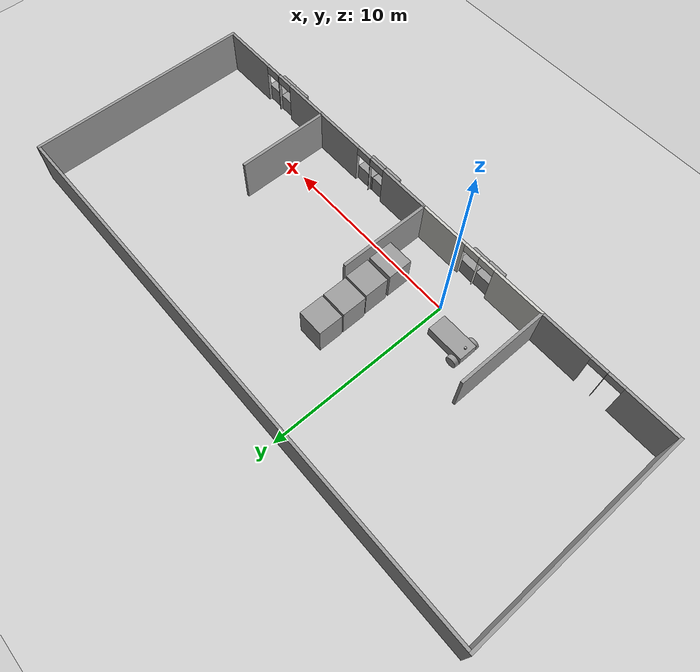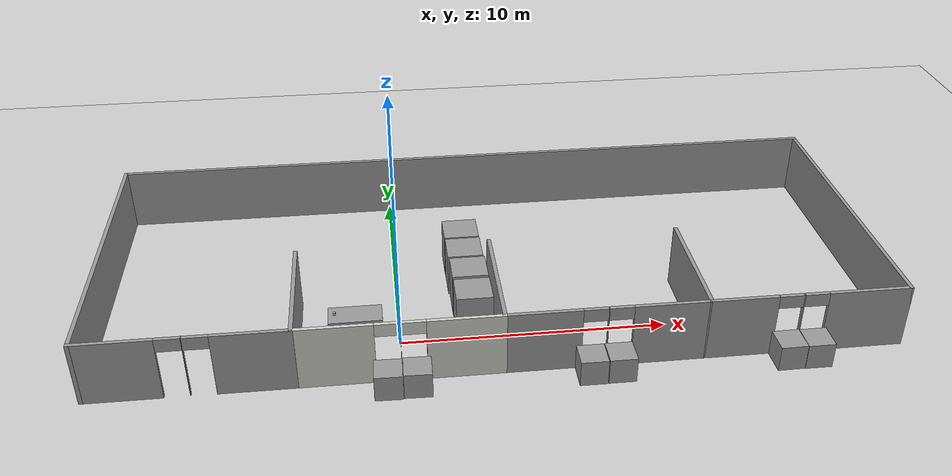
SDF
<sdf version="1.7">
 <world name="default">
  <light name="sun" type="directional">
   <pose>0 0 10 0 -0 0</pose>
   <diffuse>0.8 0.8 0.8 1</diffuse>
   <specular>0.2 0.2 0.2 1</specular>
   <attenuation>
    <range>1000</range>
    <constant>0.9</constant>
    <linear>0.01</linear>
    <quadratic>0.001</quadratic>
   </attenuation>
   <direction>-0.5 0.1 -0.9</direction>
   <spot><inner_angle>0</inner_angle><outer_angle>0</outer_angle><falloff>0</falloff></spot>
  </light>
  <model name="ground_plane">
   <static>1</static>
   <link name="link">
    <collision name="collision">
     <geometry><plane><normal>0 0 1</normal><size>100 100</size></plane></geometry>
     <surface><friction><ode><mu>100</mu><mu2>50</mu2></ode></friction></surface>
    </collision>
    <visual name="visual">
     <cast_shadows>0</cast_shadows>
     <geometry><plane><normal>0 0 1</normal><size>100 100</size></plane></geometry>
     <material>
      <script><uri>file://media/materials/scripts/gazebo.material</uri><name>Gazebo/Grey</name></script>
     </material>
    </visual>
   </link>
  </model>
  <gravity>0 0 -9.8</gravity>
  <magnetic_field>6e-06 2.3e-05 -4.2e-05</magnetic_field>
  <atmosphere type="adiabatic"/>
  <physics type="ode">
   <max_step_size>0.001</max_step_size>
   <real_time_factor>1</real_time_factor>
   <real_time_update_rate>1000</real_time_update_rate>
  </physics>
  <scene><ambient>0.4 0.4 0.4 1</ambient><background>0.7 0.7 0.7 1</background><shadows>1</shadows></scene>
  <spherical_coordinates>
   <surface_model>EARTH_WGS84</surface_model>
   <latitude_deg>0</latitude_deg>
   <longitude_deg>0</longitude_deg>
   <elevation>0</elevation>
   <heading_deg>0</heading_deg>
  </spherical_coordinates>
  <model name="gf_simulation">
   <pose>3.62768 3.86036 0 0 -0 0</pose>
   <link name="Wall_1">
    <pose>-3.675 -5.925 0 0 -0 0</pose>
    <visual name="Wall_1_Visual_0">
     <pose>-2.30795 0 1.25 0 -0 0</pose>
     <geometry><box><size>2.8841 0.15 2.5</size></box></geometry>
     <material>
      <script><uri>file://media/materials/scripts/gazebo.material</uri><name>Gazebo/CeilingTiled</name></script>
      <ambient>1 1 1 1</ambient>
     </material>
     <meta><layer>0</layer></meta>
    </visual>
    <collision name="Wall_1_Collision_0">
     <geometry><box><size>2.8841 0.15 2.5</size></box></geometry>
     <pose>-2.30795 0 1.25 0 -0 0</pose>
    </collision>
    <visual name="Wall_1_Visual_1">
     <pose>0.038466 0 1.25 0 -0 0</pose>
     <geometry><box><size>0.008729 0.15 2.5</size></box></geometry>
     <material>
      <script><uri>file://media/materials/scripts/gazebo.material</uri><name>Gazebo/CeilingTiled</name></script>
      <ambient>1 1 1 1</ambient>
     </material>
     <meta><layer>0</layer></meta>
    </visual>
    <collision name="Wall_1_Collision_1">
     <geometry><box><size>0.008729 0.15 2.5</size></box></geometry>
     <pose>0.038466 0 1.25 0 -0 0</pose>
    </collision>
    <visual name="Wall_1_Visual_2">
     <pose>2.34641 0 1.25 0 -0 0</pose>
     <geometry><box><size>2.80717 0.15 2.5</size></box></geometry>
     <material>
      <script><uri>file://media/materials/scripts/gazebo.material</uri><name>Gazebo/CeilingTiled</name></script>
      <ambient>1 1 1 1</ambient>
     </material>
     <meta><layer>0</layer></meta>
    </visual>
    <collision name="Wall_1_Collision_2">
     <geometry><box><size>2.80717 0.15 2.5</size></box></geometry>
     <pose>2.34641 0 1.25 0 -0 0</pose>
    </collision>
    <visual name="Wall_1_Visual_3">
     <pose>-0.415899 0 2.25 0 -0 0</pose>
     <geometry><box><size>0.9 0.15 0.5</size></box></geometry>
     <material>
      <script><uri>file://media/materials/scripts/gazebo.material</uri><name>Gazebo/CeilingTiled</name></script>
      <ambient>1 1 1 1</ambient>
     </material>
     <meta><layer>0</layer></meta>
    </visual>
    <collision name="Wall_1_Collision_3">
     <geometry><box><size>0.9 0.15 0.5</size></box></geometry>
     <pose>-0.415899 0 2.25 0 -0 0</pose>
    </collision>
    <visual name="Wall_1_Visual_4">
     <pose>0.49283 0 2.25 0 -0 0</pose>
     <geometry><box><size>0.9 0.15 0.5</size></box></geometry>
     <material>
      <script><uri>file://media/materials/scripts/gazebo.material</uri><name>Gazebo/CeilingTiled</name></script>
      <ambient>1 1 1 1</ambient>
     </material>
     <meta><layer>0</layer></meta>
    </visual>
    <collision name="Wall_1_Collision_4">
     <geometry><box><size>0.9 0.15 0.5</size></box></geometry>
     <pose>0.49283 0 2.25 0 -0 0</pose>
    </collision>
   </link>
   <link name="Wall_10">
    <pose>3.675 -5.925 0 0 -0 0</pose>
    <visual name="Wall_10_Visual_0">
     <pose>-2.33475 0 1.25 0 -0 0</pose>
     <geometry><box><size>2.83049 0.15 2.5</size></box></geometry>
     <material>
      <script><uri>file://media/materials/scripts/gazebo.material</uri><name>Gazebo/Grey</name></script>
      <ambient>1 1 1 1</ambient>
     </material>
     <meta><layer>0</layer></meta>
    </visual>
    <collision name="Wall_10_Collision_0">
     <geometry><box><size>2.83049 0.15 2.5</size></box></geometry>
     <pose>-2.33475 0 1.25 0 -0 0</pose>
    </collision>
    <visual name="Wall_10_Visual_1">
     <pose>-0.009967 0 1.25 0 -0 0</pose>
     <geometry><box><size>0.019079 0.15 2.5</size></box></geometry>
     <material>
      <script><uri>file://media/materials/scripts/gazebo.material</uri><name>Gazebo/Grey</name></script>
      <ambient>1 1 1 1</ambient>
     </material>
     <meta><layer>0</layer></meta>
    </visual>
    <collision name="Wall_10_Collision_1">
     <geometry><box><size>0.019079 0.15 2.5</size></box></geometry>
     <pose>-0.009967 0 1.25 0 -0 0</pose>
    </collision>
    <visual name="Wall_10_Visual_2">
     <pose>2.32479 0 1.25 0 -0 0</pose>
     <geometry><box><size>2.85043 0.15 2.5</size></box></geometry>
     <material>
      <script><uri>file://media/materials/scripts/gazebo.material</uri><name>Gazebo/Grey</name></script>
      <ambient>1 1 1 1</ambient>
     </material>
     <meta><layer>0</layer></meta>
    </visual>
    <collision name="Wall_10_Collision_2">
     <geometry><box><size>2.85043 0.15 2.5</size></box></geometry>
     <pose>2.32479 0 1.25 0 -0 0</pose>
    </collision>
    <visual name="Wall_10_Visual_3">
     <pose>-0.469506 0 2.25 0 -0 0</pose>
     <geometry><box><size>0.9 0.15 0.5</size></box></geometry>
     <material>
      <script><uri>file://media/materials/scripts/gazebo.material</uri><name>Gazebo/Grey</name></script>
      <ambient>1 1 1 1</ambient>
     </material>
     <meta><layer>0</layer></meta>
    </visual>
    <collision name="Wall_10_Collision_3">
     <geometry><box><size>0.9 0.15 0.5</size></box></geometry>
     <pose>-0.469506 0 2.25 0 -0 0</pose>
    </collision>
    <visual name="Wall_10_Visual_4">
     <pose>0.449573 0 2.25 0 -0 0</pose>
     <geometry><box><size>0.9 0.15 0.5</size></box></geometry>
     <material>
      <script><uri>file://media/materials/scripts/gazebo.material</uri><name>Gazebo/Grey</name></script>
      <ambient>1 1 1 1</ambient>
     </material>
     <meta><layer>0</layer></meta>
    </visual>
    <collision name="Wall_10_Collision_4">
     <geometry><box><size>0.9 0.15 0.5</size></box></geometry>
     <pose>0.449573 0 2.25 0 -0 0</pose>
    </collision>
   </link>
   <link name="Wall_13">
    <collision name="Wall_13_Collision">
     <geometry><box><size>5 0.15 2.5</size></box></geometry>
     <pose>0 0 1.25 0 -0 0</pose>
    </collision>
    <visual name="Wall_13_Visual">
     <pose>0 0 1.25 0 -0 0</pose>
     <geometry><box><size>5 0.15 2.5</size></box></geometry>
     <material>
      <script><uri>file://media/materials/scripts/gazebo.material</uri><name>Gazebo/Grey</name></script>
      <ambient>1 1 1 1</ambient>
     </material>
     <meta><layer>0</layer></meta>
    </visual>
    <pose>7.35 -3.5 0 0 -0 1.5708</pose>
   </link>
   <link name="Wall_16">
    <pose>11.025 -5.925 0 0 -0 0</pose>
    <visual name="Wall_16_Visual_0">
     <pose>-2.47856 0 1.25 0 -0 0</pose>
     <geometry><box><size>2.54289 0.15 2.5</size></box></geometry>
     <material>
      <script><uri>file://media/materials/scripts/gazebo.material</uri><name>Gazebo/Grey</name></script>
      <ambient>1 1 1 1</ambient>
     </material>
     <meta><layer>0</layer></meta>
    </visual>
    <collision name="Wall_16_Collision_0">
     <geometry><box><size>2.54289 0.15 2.5</size></box></geometry>
     <pose>-2.47856 0 1.25 0 -0 0</pose>
    </collision>
    <visual name="Wall_16_Visual_1">
     <pose>-0.285478 0 1.25 0 -0 0</pose>
     <geometry><box><size>0.043266 0.15 2.5</size></box></geometry>
     <material>
      <script><uri>file://media/materials/scripts/gazebo.material</uri><name>Gazebo/Grey</name></script>
      <ambient>1 1 1 1</ambient>
     </material>
     <meta><layer>0</layer></meta>
    </visual>
    <collision name="Wall_16_Collision_1">
     <geometry><box><size>0.043266 0.15 2.5</size></box></geometry>
     <pose>-0.285478 0 1.25 0 -0 0</pose>
    </collision>
    <visual name="Wall_16_Visual_2">
     <pose>2.19308 0 1.25 0 -0 0</pose>
     <geometry><box><size>3.11384 0.15 2.5</size></box></geometry>
     <material>
      <script><uri>file://media/materials/scripts/gazebo.material</uri><name>Gazebo/Grey</name></script>
      <ambient>1 1 1 1</ambient>
     </material>
     <meta><layer>0</layer></meta>
    </visual>
    <collision name="Wall_16_Collision_2">
     <geometry><box><size>3.11384 0.15 2.5</size></box></geometry>
     <pose>2.19308 0 1.25 0 -0 0</pose>
    </collision>
    <visual name="Wall_16_Visual_3">
     <pose>-0.757111 0 2.25 0 -0 0</pose>
     <geometry><box><size>0.9 0.15 0.5</size></box></geometry>
     <material>
      <script><uri>file://media/materials/scripts/gazebo.material</uri><name>Gazebo/Grey</name></script>
      <ambient>1 1 1 1</ambient>
     </material>
     <meta><layer>0</layer></meta>
    </visual>
    <collision name="Wall_16_Collision_3">
     <geometry><box><size>0.9 0.15 0.5</size></box></geometry>
     <pose>-0.757111 0 2.25 0 -0 0</pose>
    </collision>
    <visual name="Wall_16_Visual_4">
     <pose>0.186155 0 2.25 0 -0 0</pose>
     <geometry><box><size>0.9 0.15 0.5</size></box></geometry>
     <material>
      <script><uri>file://media/materials/scripts/gazebo.material</uri><name>Gazebo/Grey</name></script>
      <ambient>1 1 1 1</ambient>
     </material>
     <meta><layer>0</layer></meta>
    </visual>
    <collision name="Wall_16_Collision_4">
     <geometry><box><size>0.9 0.15 0.5</size></box></geometry>
     <pose>0.186155 0 2.25 0 -0 0</pose>
    </collision>
   </link>
   <link name="Wall_20">
    <collision name="Wall_20_Collision">
     <geometry><box><size>12 0.15 2.5</size></box></geometry>
     <pose>0 0 1.25 0 -0 0</pose>
    </collision>
    <visual name="Wall_20_Visual">
     <pose>0 0 1.25 0 -0 0</pose>
     <geometry><box><size>12 0.15 2.5</size></box></geometry>
     <material>
      <script><uri>file://media/materials/scripts/gazebo.material</uri><name>Gazebo/Grey</name></script>
      <ambient>1 1 1 1</ambient>
     </material>
     <meta><layer>0</layer></meta>
    </visual>
    <pose>14.7 0 0 0 -0 1.5708</pose>
   </link>
   <link name="Wall_22">
    <pose>-11.025 -5.925 0 0 -0 3.14159</pose>
    <visual name="Wall_22_Visual_0">
     <pose>-2.34634 0 1.25 0 -0 0</pose>
     <geometry><box><size>2.80732 0.15 2.5</size></box></geometry>
     <material>
      <script><uri>file://media/materials/scripts/gazebo.material</uri><name>Gazebo/Grey</name></script>
      <ambient>1 1 1 1</ambient>
     </material>
     <meta><layer>0</layer></meta>
    </visual>
    <collision name="Wall_22_Collision_0">
     <geometry><box><size>2.80732 0.15 2.5</size></box></geometry>
     <pose>-2.34634 0 1.25 0 -0 0</pose>
    </collision>
    <visual name="Wall_22_Visual_1">
     <pose>-0.033144 0 1.25 0 -0 0</pose>
     <geometry><box><size>0.019079 0.15 2.5</size></box></geometry>
     <material>
      <script><uri>file://media/materials/scripts/gazebo.material</uri><name>Gazebo/Grey</name></script>
      <ambient>1 1 1 1</ambient>
     </material>
     <meta><layer>0</layer></meta>
    </visual>
    <collision name="Wall_22_Collision_1">
     <geometry><box><size>0.019079 0.15 2.5</size></box></geometry>
     <pose>-0.033144 0 1.25 0 -0 0</pose>
    </collision>
    <visual name="Wall_22_Visual_2">
     <pose>2.3132 0 1.25 0 -0 0</pose>
     <geometry><box><size>2.8736 0.15 2.5</size></box></geometry>
     <material>
      <script><uri>file://media/materials/scripts/gazebo.material</uri><name>Gazebo/Grey</name></script>
      <ambient>1 1 1 1</ambient>
     </material>
     <meta><layer>0</layer></meta>
    </visual>
    <collision name="Wall_22_Collision_2">
     <geometry><box><size>2.8736 0.15 2.5</size></box></geometry>
     <pose>2.3132 0 1.25 0 -0 0</pose>
    </collision>
    <visual name="Wall_22_Visual_3">
     <pose>-0.492683 0 2.25 0 -0 0</pose>
     <geometry><box><size>0.9 0.15 0.5</size></box></geometry>
     <material>
      <script><uri>file://media/materials/scripts/gazebo.material</uri><name>Gazebo/Grey</name></script>
      <ambient>1 1 1 1</ambient>
     </material>
     <meta><layer>0</layer></meta>
    </visual>
    <collision name="Wall_22_Collision_3">
     <geometry><box><size>0.9 0.15 0.5</size></box></geometry>
     <pose>-0.492683 0 2.25 0 -0 0</pose>
    </collision>
    <visual name="Wall_22_Visual_4">
     <pose>0.426395 0 2.25 0 -0 0</pose>
     <geometry><box><size>0.9 0.15 0.5</size></box></geometry>
     <material>
      <script><uri>file://media/materials/scripts/gazebo.material</uri><name>Gazebo/Grey</name></script>
      <ambient>1 1 1 1</ambient>
     </material>
     <meta><layer>0</layer></meta>
    </visual>
    <collision name="Wall_22_Collision_4">
     <geometry><box><size>0.9 0.15 0.5</size></box></geometry>
     <pose>0.426395 0 2.25 0 -0 0</pose>
    </collision>
   </link>
   <link name="Wall_23">
    <collision name="Wall_23_Collision">
     <geometry><box><size>12 0.15 2.5</size></box></geometry>
     <pose>0 0 1.25 0 -0 0</pose>
    </collision>
    <visual name="Wall_23_Visual">
     <pose>0 0 1.25 0 -0 0</pose>
     <geometry><box><size>12 0.15 2.5</size></box></geometry>
     <material>
      <script><uri>file://media/materials/scripts/gazebo.material</uri><name>Gazebo/Grey</name></script>
      <ambient>1 1 1 1</ambient>
     </material>
     <meta><layer>0</layer></meta>
    </visual>
    <pose>-14.7 0 0 0 -0 1.5708</pose>
   </link>
   <link name="Wall_24">
    <collision name="Wall_24_Collision">
     <geometry><box><size>29.55 0.15 2.5</size></box></geometry>
     <pose>0 0 1.25 0 -0 0</pose>
    </collision>
    <visual name="Wall_24_Visual">
     <pose>0 0 1.25 0 -0 0</pose>
     <geometry><box><size>29.55 0.15 2.5</size></box></geometry>
     <material>
      <script><uri>file://media/materials/scripts/gazebo.material</uri><name>Gazebo/Grey</name></script>
      <ambient>1 1 1 1</ambient>
     </material>
     <meta><layer>0</layer></meta>
    </visual>
    <pose>0 5.925 0 0 -0 0</pose>
   </link>
   <link name="Wall_3">
    <collision name="Wall_3_Collision">
     <geometry><box><size>5 0.15 2.5</size></box></geometry>
     <pose>0 0 1.25 0 -0 0</pose>
    </collision>
    <visual name="Wall_3_Visual">
     <pose>0 0 1.25 0 -0 0</pose>
     <geometry><box><size>5 0.15 2.5</size></box></geometry>
     <material>
      <script><uri>file://media/materials/scripts/gazebo.material</uri><name>Gazebo/Grey</name></script>
      <ambient>1 1 1 1</ambient>
     </material>
     <meta><layer>0</layer></meta>
    </visual>
    <pose>0 -3.5 0 0 -0 1.5708</pose>
   </link>
   <link name="Wall_7">
    <collision name="Wall_7_Collision">
     <geometry><box><size>5 0.15 2.5</size></box></geometry>
     <pose>0 0 1.25 0 -0 0</pose>
    </collision>
    <visual name="Wall_7_Visual">
     <pose>0 0 1.25 0 -0 0</pose>
     <geometry><box><size>5 0.15 2.5</size></box></geometry>
     <material>
      <script><uri>file://media/materials/scripts/gazebo.material</uri><name>Gazebo/Grey</name></script>
      <ambient>1 1 1 1</ambient>
     </material>
     <meta><layer>0</layer></meta>
    </visual>
    <pose>-7.35 -3.5 0 0 -0 1.5708</pose>
   </link>
   <static>1</static>
  </model>
  <model name="unit_box_2">
   <pose>-0.515594 -2.64975 0.5 0 0 -0.018841</pose>
   <link name="link">
    <inertial>
     <mass>1</mass>
     <inertia>
      <ixx>0.166667</ixx>
      <ixy>0</ixy>
      <ixz>0</ixz>
      <iyy>0.166667</iyy>
      <iyz>0</iyz>
      <izz>0.166667</izz>
     </inertia>
    </inertial>
    <collision name="collision"><geometry><box><size>1 1 1</size></box></geometry></collision>
    <visual name="visual">
     <geometry><box><size>1 1 1</size></box></geometry>
     <material>
      <script><name>Gazebo/Grey</name><uri>file://media/materials/scripts/gazebo.material</uri></script>
     </material>
    </visual>
   </link>
  </model>
  <model name="unit_box_2_clone">
   <pose>0.506728 -2.63164 0.5 0 0 -0.022841</pose>
   <link name="link">
    <inertial>
     <mass>1</mass>
     <inertia>
      <ixx>0.166667</ixx>
      <ixy>0</ixy>
      <ixz>0</ixz>
      <iyy>0.166667</iyy>
      <iyz>0</iyz>
      <izz>0.166667</izz>
     </inertia>
    </inertial>
    <collision name="collision"><geometry><box><size>1 1 1</size></box></geometry></collision>
    <visual name="visual">
     <geometry><box><size>1 1 1</size></box></geometry>
     <material>
      <script><name>Gazebo/Grey</name><uri>file://media/materials/scripts/gazebo.material</uri></script>
     </material>
    </visual>
   </link>
  </model>
  <model name="unit_box_2_clone_0">
   <pose>6.66488 -2.64719 0.5 0 0 -0.008589</pose>
   <link name="link">
    <inertial>
     <mass>1</mass>
     <inertia>
      <ixx>0.166667</ixx>
      <ixy>0</ixy>
      <ixz>0</ixz>
      <iyy>0.166667</iyy>
      <iyz>0</iyz>
      <izz>0.166667</izz>
     </inertia>
    </inertial>
    <collision name="collision"><geometry><box><size>1 1 1</size></box></geometry></collision>
    <visual name="visual">
     <geometry><box><size>1 1 1</size></box></geometry>
     <material>
      <script><name>Gazebo/Grey</name><uri>file://media/materials/scripts/gazebo.material</uri></script>
     </material>
    </visual>
   </link>
  </model>
  <model name="unit_box_2_clone_1">
   <pose>7.69165 -2.64025 0.5 0 0 -0.000602</pose>
   <link name="link">
    <inertial>
     <mass>1</mass>
     <inertia>
      <ixx>0.166667</ixx>
      <ixy>0</ixy>
      <ixz>0</ixz>
      <iyy>0.166667</iyy>
      <iyz>0</iyz>
      <izz>0.166667</izz>
     </inertia>
    </inertial>
    <collision name="collision"><geometry><box><size>1 1 1</size></box></geometry></collision>
    <visual name="visual">
     <geometry><box><size>1 1 1</size></box></geometry>
     <material>
      <script><name>Gazebo/Grey</name><uri>file://media/materials/scripts/gazebo.material</uri></script>
     </material>
    </visual>
   </link>
  </model>
  <model name="unit_box_2_clone_3">
   <pose>14.8644 -2.63992 0.5 0 -0 7e-06</pose>
   <link name="link">
    <inertial>
     <mass>1</mass>
     <inertia>
      <ixx>0.166667</ixx>
      <ixy>0</ixy>
      <ixz>0</ixz>
      <iyy>0.166667</iyy>
      <iyz>0</iyz>
      <izz>0.166667</izz>
     </inertia>
    </inertial>
    <collision name="collision"><geometry><box><size>1 1 1</size></box></geometry></collision>
    <visual name="visual">
     <geometry><box><size>1 1 1</size></box></geometry>
     <material>
      <script><name>Gazebo/Grey</name><uri>file://media/materials/scripts/gazebo.material</uri></script>
     </material>
    </visual>
   </link>
  </model>
  <model name="unit_box_2_clone_3_clone">
   <pose>13.8547 -2.63205 0.5 0 -0 0.018794</pose>
   <link name="link">
    <inertial>
     <mass>1</mass>
     <inertia>
      <ixx>0.166667</ixx>
      <ixy>0</ixy>
      <ixz>0</ixz>
      <iyy>0.166667</iyy>
      <iyz>0</iyz>
      <izz>0.166667</izz>
     </inertia>
    </inertial>
    <collision name="collision"><geometry><box><size>1 1 1</size></box></geometry></collision>
    <visual name="visual">
     <geometry><box><size>1 1 1</size></box></geometry>
     <material>
      <script><name>Gazebo/Grey</name><uri>file://media/materials/scripts/gazebo.material</uri></script>
     </material>
    </visual>
   </link>
  </model>
  <model name="follower_vehicle">
   <pose>-1.7569 0.946335 0.325007 0 -8e-06 -3.13952</pose>
   <link name="chassis">
    <pose>-0.151427 -0 0.175 0 -0 0</pose>
    <inertial>
     <mass>1.14395</mass>
     <inertia>
      <ixx>0.126164</ixx>
      <ixy>0</ixy>
      <ixz>0</ixz>
      <iyy>0.416519</iyy>
      <iyz>0</iyz>
      <izz>0.481014</izz>
     </inertia>
    </inertial>
    <visual name="visual">
     <geometry><box><size>2.01142 1 0.568726</size></box></geometry>
     <material>
      <script><uri>file://media/materials/scripts/gazebo.material</uri><name>Gazebo/Grey</name></script>
     </material>
    </visual>
    <collision name="collision">
     <geometry><box><size>2.01142 1 0.568726</size></box></geometry>
     <surface>
      <friction><ode><mu>1</mu><mu2>1</mu2><fdir1>0 0 0</fdir1><slip1>0</slip1><slip2>0</slip2></ode></friction>
      <bounce><restitution_coefficient>0</restitution_coefficient><threshold>1e+06</threshold></bounce>
      <contact>
       <collide_without_contact>0</collide_without_contact>
       <collide_without_contact_bitmask>1</collide_without_contact_bitmask>
       <collide_bitmask>1</collide_bitmask>
       <ode>
        <soft_cfm>0</soft_cfm>
        <soft_erp>0.2</soft_erp>
        <kp>1e+13</kp>
        <kd>1</kd>
        <max_vel>0.01</max_vel>
        <min_depth>0</min_depth>
       </ode>
      </contact>
     </surface>
    </collision>
   </link>
   <link name="wheel_1">
    <pose>0.554283 0.625029 -0.025 1.5707 -0 0</pose>
    <inertial>
     <mass>2</mass>
     <inertia><ixx>0.145833</ixx><ixy>0</ixy><ixz>0</ixz><iyy>0.145833</iyy><iyz>0</iyz><izz>0.125</izz></inertia>
    </inertial>
    <visual name="visual">
     <geometry><cylinder><radius>0.3</radius><length>0.25</length></cylinder></geometry>
     <material>
      <script><uri>file://media/materials/scripts/gazebo.material</uri><name>Gazebo/Grey</name></script>
     </material>
    </visual>
    <collision name="collision">
     <geometry><cylinder><radius>0.3</radius><length>0.25</length></cylinder></geometry>
     <surface>
      <friction><ode><mu>1</mu><mu2>1</mu2><fdir1>0 0 0</fdir1><slip1>0</slip1><slip2>0</slip2></ode></friction>
      <bounce><restitution_coefficient>0</restitution_coefficient><threshold>1e+06</threshold></bounce>
      <contact>
       <collide_without_contact>0</collide_without_contact>
       <collide_without_contact_bitmask>1</collide_without_contact_bitmask>
       <collide_bitmask>1</collide_bitmask>
       <ode>
        <soft_cfm>0</soft_cfm>
        <soft_erp>0.2</soft_erp>
        <kp>1e+13</kp>
        <kd>1</kd>
        <max_vel>0.01</max_vel>
        <min_depth>0</min_depth>
       </ode>
      </contact>
     </surface>
    </collision>
   </link>
   <link name="wheel_2">
    <pose>0.554282 -0.625029 -0.025 1.5707 -0 0</pose>
    <inertial>
     <mass>2</mass>
     <inertia><ixx>0.145833</ixx><ixy>0</ixy><ixz>0</ixz><iyy>0.145833</iyy><iyz>0</iyz><izz>0.125</izz></inertia>
    </inertial>
    <visual name="visual">
     <geometry><cylinder><radius>0.3</radius><length>0.25</length></cylinder></geometry>
     <material>
      <script><uri>file://media/materials/scripts/gazebo.material</uri><name>Gazebo/Grey</name></script>
     </material>
    </visual>
    <collision name="collision">
     <geometry><cylinder><radius>0.3</radius><length>0.25</length></cylinder></geometry>
     <surface>
      <friction><ode><mu>1</mu><mu2>1</mu2><fdir1>0 0 0</fdir1><slip1>0</slip1><slip2>0</slip2></ode></friction>
      <bounce><restitution_coefficient>0</restitution_coefficient><threshold>1e+06</threshold></bounce>
      <contact>
       <collide_without_contact>0</collide_without_contact>
       <collide_without_contact_bitmask>1</collide_without_contact_bitmask>
       <collide_bitmask>1</collide_bitmask>
       <ode>
        <soft_cfm>0</soft_cfm>
        <soft_erp>0.2</soft_erp>
        <kp>1e+13</kp>
        <kd>1</kd>
        <max_vel>0.01</max_vel>
        <min_depth>0</min_depth>
       </ode>
      </contact>
     </surface>
    </collision>
   </link>
   <link name="caster">
    <pose>-0.957138 -0 -0.125 0 -0 0</pose>
    <inertial>
     <mass>1</mass>
     <inertia><ixx>0.1</ixx><ixy>0</ixy><ixz>0</ixz><iyy>0.1</iyy><iyz>0</iyz><izz>0.1</izz></inertia>
    </inertial>
    <visual name="visual">
     <geometry><sphere><radius>0.2</radius></sphere></geometry>
     <material>
      <script><uri>file://media/materials/scripts/gazebo.material</uri><name>Gazebo/Grey</name></script>
     </material>
    </visual>
    <collision name="collision">
     <geometry><sphere><radius>0.2</radius></sphere></geometry>
     <surface>
      <friction><ode><mu>1</mu><mu2>1</mu2><fdir1>0 0 0</fdir1><slip1>0</slip1><slip2>0</slip2></ode></friction>
      <bounce><restitution_coefficient>0</restitution_coefficient><threshold>1e+06</threshold></bounce>
      <contact>
       <collide_without_contact>0</collide_without_contact>
       <collide_without_contact_bitmask>1</collide_without_contact_bitmask>
       <collide_bitmask>1</collide_bitmask>
       <ode>
        <soft_cfm>0</soft_cfm>
        <soft_erp>0.2</soft_erp>
        <kp>1e+13</kp>
        <kd>1</kd>
        <max_vel>0.01</max_vel>
        <min_depth>0</min_depth>
       </ode>
      </contact>
     </surface>
    </collision>
   </link>
   <model name="depth_camera">
    <link name="link">
     <pose>0.05 0.05 0.05 0 -0 0</pose>
     <inertial>
      <mass>0.1</mass>
      <inertia>
       <ixx>0.000166667</ixx>
       <iyy>0.000166667</iyy>
       <izz>0.000166667</izz>
       <ixy>0</ixy>
       <ixz>0</ixz>
       <iyz>0</iyz>
      </inertia>
     </inertial>
     <collision name="collision"><geometry><box><size>0.1 0.1 0.1</size></box></geometry></collision>
     <visual name="visual"><geometry><box><size>0.1 0.1 0.1</size></box></geometry></visual>
     <sensor name="camera" type="depth">
      <camera name="depth">
       <horizontal_fov>1.047</horizontal_fov>
       <image><width>320</width><height>240</height></image>
       <clip><near>0.1</near><far>100</far></clip>
      </camera>
      <always_on>1</always_on>
      <update_rate>30</update_rate>
      <visualize>1</visualize>
     </sensor>
    </link>
    <pose>0.569632 -0.03223 0.502056 0 -0 0</pose>
   </model>
   <joint name="chassis_wheel_1_revolute" type="revolute">
    <parent>chassis</parent>
    <child>wheel_1</child>
    <axis>
     <xyz>0 0 1</xyz>
     <limit>
      <lower>-1.79769e+308</lower>
      <upper>1.79769e+308</upper>
      <effort>-1</effort>
      <velocity>-1</velocity>
     </limit>
     <dynamics>
      <spring_reference>0</spring_reference>
      <spring_stiffness>0</spring_stiffness>
      <damping>0</damping>
      <friction>0</friction>
     </dynamics>
    </axis>
    <physics>
     <ode><limit><cfm>0</cfm><erp>0.2</erp></limit><suspension><cfm>0</cfm><erp>0.2</erp></suspension></ode>
    </physics>
   </joint>
   <joint name="chassis_wheel_2_revolute" type="revolute">
    <parent>chassis</parent>
    <child>wheel_2</child>
    <axis>
     <xyz>0 0 1</xyz>
     <limit>
      <lower>-1.79769e+308</lower>
      <upper>1.79769e+308</upper>
      <effort>-1</effort>
      <velocity>-1</velocity>
     </limit>
     <dynamics>
      <spring_reference>0</spring_reference>
      <spring_stiffness>0</spring_stiffness>
      <damping>0</damping>
      <friction>0</friction>
     </dynamics>
    </axis>
    <physics>
     <ode><limit><cfm>0</cfm><erp>0.2</erp></limit><suspension><cfm>0</cfm><erp>0.2</erp></suspension></ode>
    </physics>
   </joint>
   <joint name="chassis_caster_ball" type="ball">
    <parent>chassis</parent>
    <child>caster</child>
    <physics>
     <ode><limit><cfm>0</cfm><erp>0.2</erp></limit><suspension><cfm>0</cfm><erp>0.2</erp></suspension></ode>
    </physics>
   </joint>
   <joint name="chassis_depth_camera_link_fixed" type="fixed">
    <parent>chassis</parent>
    <child>depth_camera::link</child>
    <physics>
     <ode><limit><cfm>0</cfm><erp>0.2</erp></limit><suspension><cfm>0</cfm><erp>0.2</erp></suspension></ode>
    </physics>
   </joint>
   <static>0</static>
   <plugin name="follower" filename="libFollowerPlugin.so"/>
  </model>
  <model name="unit_box_0_clone_1">
   <pose>2.80343 0.753377 0.866966 0 6e-06 0.003299</pose>
   <link name="link">
    <inertial>
     <mass>1</mass>
     <inertia>
      <ixx>0.166667</ixx>
      <ixy>0</ixy>
      <ixz>0</ixz>
      <iyy>0.166667</iyy>
      <iyz>0</iyz>
      <izz>0.166667</izz>
     </inertia>
    </inertial>
    <collision name="collision"><geometry><box><size>1.37357 1.30715 1.73394</size></box></geometry></collision>
    <visual name="visual">
     <geometry><box><size>1.37357 1.30715 1.73394</size></box></geometry>
     <material>
      <script><name>Gazebo/Grey</name><uri>file://media/materials/scripts/gazebo.material</uri></script>
     </material>
    </visual>
   </link>
  </model>
  <model name="unit_box_0_clone_1_clone">
   <pose>2.78891 2.21064 0.866966 6e-06 0 0.003247</pose>
   <link name="link">
    <inertial>
     <mass>1</mass>
     <inertia>
      <ixx>0.166667</ixx>
      <ixy>0</ixy>
      <ixz>0</ixz>
      <iyy>0.166667</iyy>
      <iyz>0</iyz>
      <izz>0.166667</izz>
     </inertia>
    </inertial>
    <collision name="collision"><geometry><box><size>1.37357 1.30715 1.73394</size></box></geometry></collision>
    <visual name="visual">
     <geometry><box><size>1.37357 1.30715 1.73394</size></box></geometry>
     <material>
      <script><name>Gazebo/Grey</name><uri>file://media/materials/scripts/gazebo.material</uri></script>
     </material>
    </visual>
   </link>
  </model>
  <model name="unit_box_0_clone_1_clone_0">
   <pose>2.7323 3.60451 0.866966 7e-06 -0 0.003249</pose>
   <link name="link">
    <inertial>
     <mass>1</mass>
     <inertia>
      <ixx>0.166667</ixx>
      <ixy>0</ixy>
      <ixz>0</ixz>
      <iyy>0.166667</iyy>
      <iyz>0</iyz>
      <izz>0.166667</izz>
     </inertia>
    </inertial>
    <collision name="collision"><geometry><box><size>1.37357 1.30715 1.73394</size></box></geometry></collision>
    <visual name="visual">
     <geometry><box><size>1.37357 1.30715 1.73394</size></box></geometry>
     <material>
      <script><name>Gazebo/Grey</name><uri>file://media/materials/scripts/gazebo.material</uri></script>
     </material>
    </visual>
   </link>
  </model>
  <model name="unit_box_0_clone_1_clone_1">
   <pose>2.7155 4.99358 0.866966 -7e-06 -0 0.003251</pose>
   <link name="link">
    <inertial>
     <mass>1</mass>
     <inertia>
      <ixx>0.166667</ixx>
      <ixy>0</ixy>
      <ixz>0</ixz>
      <iyy>0.166667</iyy>
      <iyz>0</iyz>
      <izz>0.166667</izz>
     </inertia>
    </inertial>
    <collision name="collision"><geometry><box><size>1.37357 1.30715 1.73394</size></box></geometry></collision>
    <visual name="visual">
     <geometry><box><size>1.37357 1.30715 1.73394</size></box></geometry>
     <material>
      <script><name>Gazebo/Grey</name><uri>file://media/materials/scripts/gazebo.material</uri></script>
     </material>
    </visual>
   </link>
  </model>
 </world>
</sdf>
